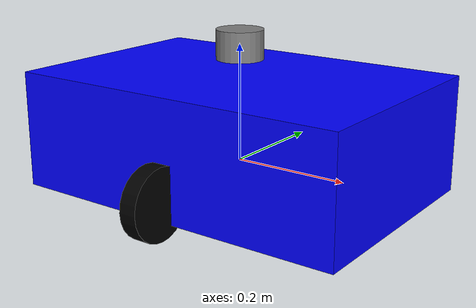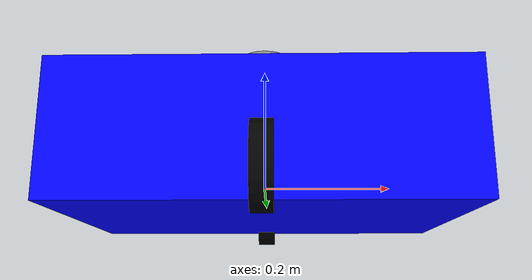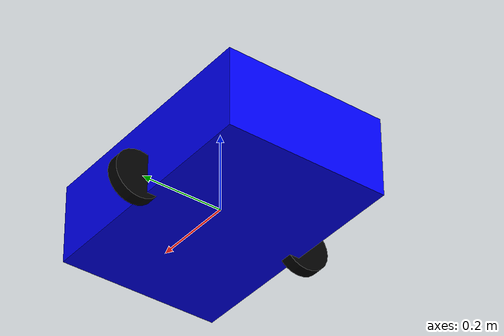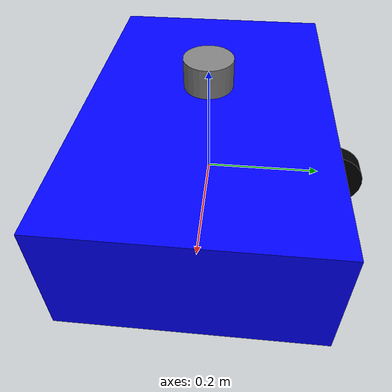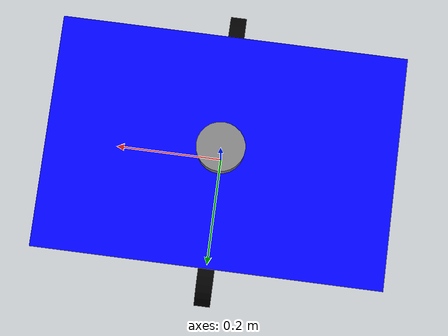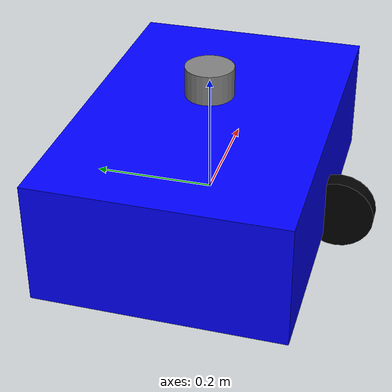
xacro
<?xml version="1.0"?>
<robot name="water_cleaner_bot" xmlns:xacro="http://ros.org/wiki/xacro">

  <!-- COLORS -->
  <material name="Blue"><color rgba="0 0 1 1"/></material>
  <material name="Black"><color rgba="0 0 0 1"/></material>
  <material name="Grey"><color rgba="0.5 0.5 0.5 1"/></material>

  <!-- Dummy root to avoid KDL inertia issue -->
  <link name="base_link"/>
  <joint name="base_joint" type="fixed">
    <parent link="base_link"/>
    <child link="body_link"/>
    <origin xyz="0 0 0.05" rpy="0 0 0"/>
  </joint>

  <!-- Main body -->
  <link name="body_link">
    <visual>
      <geometry><box size="0.6 0.4 0.2"/></geometry>
      <material name="Blue"/>
    </visual>
    <collision><geometry><box size="0.6 0.4 0.2"/></geometry></collision>
    <inertial>
      <mass value="12"/>
      <inertia ixx="0.2" ixy="0" ixz="0" iyy="0.2" iyz="0" izz="0.2"/>
    </inertial>
  </link>

  <!-- Visual wheels -->
  <link name="wheel_left_link"><visual><geometry><cylinder radius="0.06" length="0.03"/></geometry><material name="Black"/></visual></link>
  <joint name="wheel_left_joint" type="continuous">
    <parent link="body_link"/><child link="wheel_left_link"/>
    <origin xyz="0 0.22 -0.06" rpy="0 1.5708 0"/><axis xyz="0 0 1"/>
  </joint>

  <link name="wheel_right_link"><visual><geometry><cylinder radius="0.06" length="0.03"/></geometry><material name="Black"/></visual></link>
  <joint name="wheel_right_joint" type="continuous">
    <parent link="body_link"/><child link="wheel_right_link"/>
    <origin xyz="0 -0.22 -0.06" rpy="0 1.5708 0"/><axis xyz="0 0 1"/>
  </joint>

  <!-- 2D LIDAR -->
  <link name="lidar_link"><visual><geometry><cylinder radius="0.04" length="0.05"/></geometry><material name="Grey"/></visual></link>
  <joint name="lidar_joint" type="fixed">
    <parent link="body_link"/><child link="lidar_link"/>
    <origin xyz="0 0 0.15" rpy="0 0 0"/>
  </joint>

  <!-- Attach GZ sensor properly -->
  <gazebo reference="lidar_link">
    <sensor name="lidar_sensor" type="gpu_laser">
      <always_on>true</always_on>
      <visualize>true</visualize>
      <update_rate>10</update_rate>

      <ray>
        <scan>
          <horizontal>
            <samples>360</samples>
            <min_angle>-3.14159</min_angle>
            <max_angle>3.14159</max_angle>
          </horizontal>
        </scan>
        <range>
          <min>0.1</min>
          <max>20.0</max>
        </range>
      </ray>

      <!-- Correct Harmonic Laser Plugin -->
      <plugin name="gz_ros2_lidar" filename="libgazebo_ros2_gpu_laser.so">
        <ros2>
          <namespace>/</namespace>
          <remapping>~/out:=/scan</remapping>
        </ros2>
        <frame_name>lidar_link</frame_name>
      </plugin>
    </sensor>
  </gazebo>

</robot>
